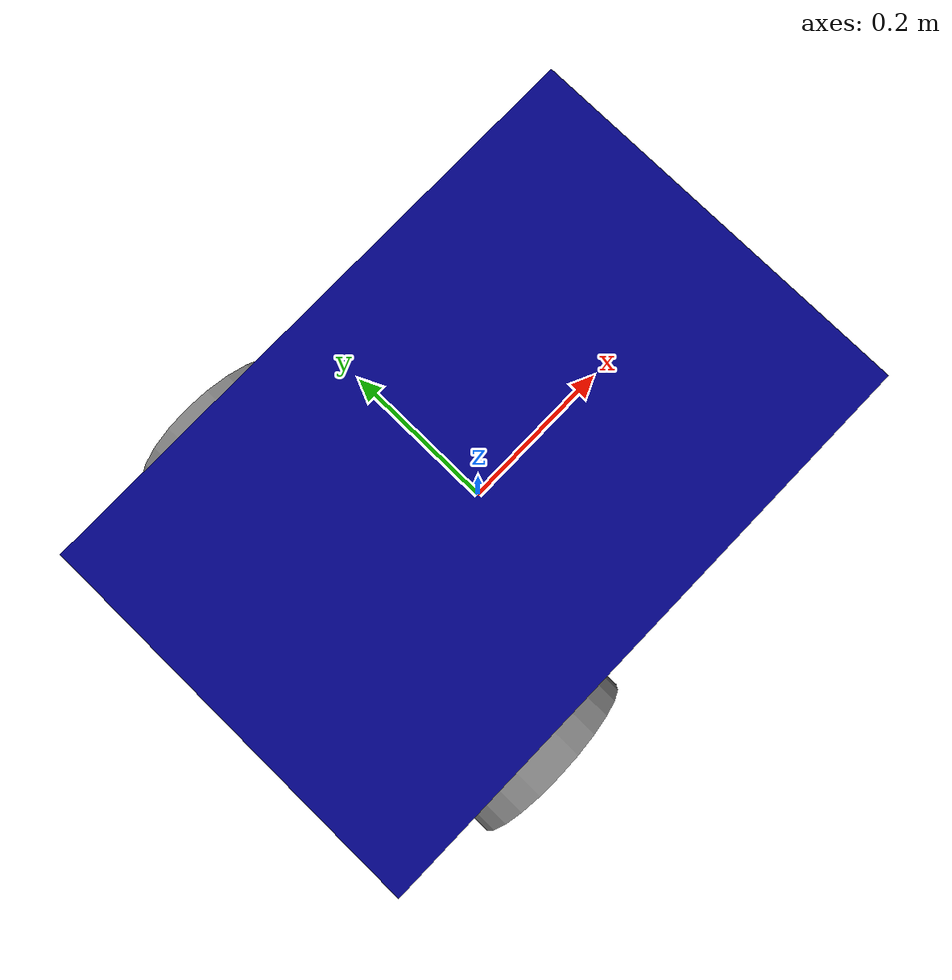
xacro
<?xml version="1.0"?>
<robot name="my_robot" xmlns:xacro="http://www.ros.arg/wiki/xacro">

    <xacro:include filename="common_properties.urdf.xacro" />
    <xacro:include filename="mobile_base.urdf.xacro" />
    <xacro:include filename="mobile_base_gazebo.xacro" />
    <xacro:include filename="camera.xacro" />

</robot>

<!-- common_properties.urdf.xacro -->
<robot xmlns:xacro="http://www.ros.org/wiki/xacro">

    <material name="blue">
        <color rgba="0 0 0.5 1" />
    </material>

    <material name="grey">
        <color rgba="0.5 0.5 0.5 1" />
    </material>

    <xacro:macro name="box_inertia" params="m x y z o_xyz o_rpy" >
    <inertial> <mass value="${m}" />
        <origin xyz="${o_xyz}" rpy="${o_rpy}" />
        <inertia ixx="${(float(m)/12) * (float(y)*float(y) + float(z)*float(z))}"
                 ixy="0" ixz="0"
                 iyy="${(float(m)/12) * (float(x)*float(x) + float(z)*float(z))}"
                 iyz="0"
                 izz="${(float(m)/12) * (float(y)*float(y) + float(x)*float(x))}" />
    </inertial>
    </xacro:macro>

    <xacro:macro name="cylinder_inertia" params="m r l o_xyz o_rpy" >
    <inertial> <mass value="${m}" />
        <origin xyz="${o_xyz}" rpy="${o_rpy}" /> <inertia ixx="${(float(m)/12) * (3*float(r)*float(r) + float(l)*float(l))}"
                 ixy="0" ixz="0"
                 iyy="${(float(m)/12) * (3*float(r)*float(r) + float(l)*float(l))}"
                 iyz="0"
                 izz="${(float(m)/2) * (float(r)*float(r))}" />
    </inertial>
    </xacro:macro>

    <xacro:macro name="sphere_inertia" params="m r o_xyz o_rpy">
    <inertial>
        <mass value="${m}" />
        <origin xyz="${o_xyz}" rpy="${o_rpy}" />
        <inertia ixx="${(2/5) * float(m) * (float(r)*float(r))}" ixy="0" ixz="0"
                 iyy="${(2/5) * float(m) * (float(r)*float(r))}" iyz="0"
                 izz="${(2/5) * float(m) * (float(r)*float(r))}" />
    </inertial>
    </xacro:macro>

</robot>

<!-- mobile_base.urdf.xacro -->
<robot xmlns:xacro="http://www.ros.org/wiki/xacro">

    <xacro:property name="base_length" value="0.6" />
    <xacro:property name="base_width" value="0.4" />
    <xacro:property name="base_height" value="0.2" />
    <xacro:property name="wheel_radius" value="0.1" />
    <xacro:property name="wheel_length" value="0.05" />

    <xacro:macro name="wheel_link" params="prefix" >
        <link name="${prefix}_wheel_link">
            <visual>
                <geometry>
                    <cylinder radius="${wheel_radius}" length="${wheel_length}" />
                </geometry>
                <origin xyz="0 0 0" rpy="${pi/ 2} 0 0" />
                <material name="grey" />
            </visual>
            <collision>
                <geometry>
                    <sphere radius="${wheel_radius}" />
                </geometry>
                <origin xyz="0 0 0" rpy="0 0 0" />
            </collision>
            <xacro:cylinder_inertia m="1.0" r="${wheel_radius}" l="${wheel_length}"
                                    o_xyz="0 0 0" o_rpy="${pi/2} 0 0" />
        </link>
    </xacro:macro>

    <link name="base_footprint" />

    <link name="base_link">
        <visual>
            <geometry>
                <box size="${base_length} ${base_width} ${base_height}" />
            </geometry>
            <origin xyz="0 0 0.1" rpy="0 0 0" />
            <material name="blue" />
        </visual>
        <collision>
            <geometry>
                <box size="${base_length} ${base_width} ${base_height}" />
            </geometry>
            <origin xyz="0 0 0.1" rpy="0 0 0" />
        </collision>
        <xacro:box_inertia m="5.0" x="${base_length}" y="${base_width}" z="${base_height}"
                           o_xyz="0 0 ${base_height /2}" o_rpy="0 0 0" />
    </link>

    <xacro:wheel_link prefix="right" />
    <xacro:wheel_link prefix="left" />

    <link name="caster_wheel_link" >
        <visual>
            <geometry>
                <sphere radius="0.05" />
            </geometry>
            <origin xyz="0 0 0" rpy="0 0 0" />
            <material name="grey" />
        </visual>
        <collision>
            <geometry>
                <sphere radius="0.05" />
            </geometry>
            <origin xyz="0 0 0" rpy="0 0 0" />
        </collision>
        <xacro:sphere_inertia m="0.5" r="0.05"
                              o_xyz="0 0 0" o_rpy="0 0 0" />
    </link>

    <joint name="base_joint" type="fixed">
        <parent link="base_footprint" />
        <child link="base_link" />
        <origin xyz="0 0 0.1" rpy="0 0 0" />
    </joint>

    <joint name="base_right_wheel_joint" type="continuous">
        <parent link="base_link" />
        <child link="right_wheel_link" />
        <origin xyz="${-base_length /4} ${-((base_width /2) + (wheel_length /2))} 0" rpy="0 0 0" />
        <axis xyz="0 1 0" />
    </joint>

    <joint name="base_left_wheel_joint" type="continuous">
        <parent link="base_link" />
        <child link="left_wheel_link" />
        <origin xyz="${-base_length /4} ${((base_width /2) + (wheel_length /2))} 0" rpy="0 0 0" />
        <axis xyz="0 1 0" />
    </joint>

    <joint name="base_caster_wheel_joint" type="fixed">
        <parent link="base_link" />
        <child link="caster_wheel_link" />
        <origin xyz="${base_length /3} 0 ${-wheel_length}" rpy="0 0 0" />
    </joint>

</robot>

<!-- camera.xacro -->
<robot xmlns:xacro="http://www.ros.org/wiki/xacro">

    <link name="camera_link">
        <visual>
            <geometry>
                <box size="0.01 0.1 0.05" />
            </geometry>
            <material name="grey" />
        </visual>
        <collision>
            <geometry>
                <box size="0.01 0.1 0.05" />
            </geometry>
        </collision>
        <xacro:box_inertia m="0.1" x="0.01" y="0.1" z="0.05"
                           o_xyz="0 0 0" o_rpy="0 0 0" />
    </link>

    <joint name="base_camera_joint" type="fixed" >
        <parent link="base_link" />
        <child link="camera_link" />
        <origin xyz="${(base_length + 0.005)/2.0} 0 ${base_height/2.0}" rpy="0 0 0" />
    </joint>

    <link name="camera_link_optical"></link>

    <joint name="camera_optical_joint" type="fixed">
        <parent link="camera_link"/>
        <child link="camera_link_optical"/>
        <origin xyz="0 0 0" rpy="${-pi/2} 0 ${-pi/2}"/>
    </joint>

    <gazebo reference="camera_link">
        <sensor name="camera" type="camera">
            <pose> 0 0 0 0 0 0 </pose>
            <visualize>true</visualize>
            <update_rate>20</update_rate>
            <camera>
                <horizontal_fov>1.089</horizontal_fov>
                <image>
                    <format>RGB_INT8</format> <width>640</width>
                    <height>480</height>
                </image>
                <clip>
                    <near>0.05</near>
                    <far>8.0</far>
                </clip>
            </camera>
            <topic>camera/image_raw</topic>
            <gz_frame_id>camera_link_optical</gz_frame_id>
        </sensor>
    </gazebo>

</robot>
